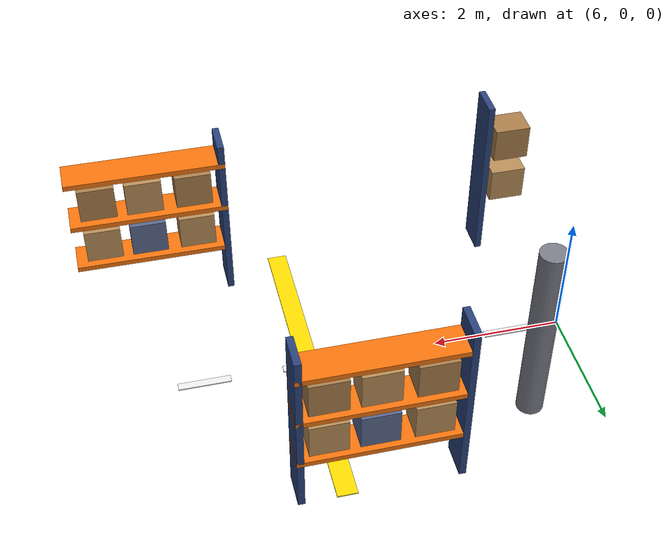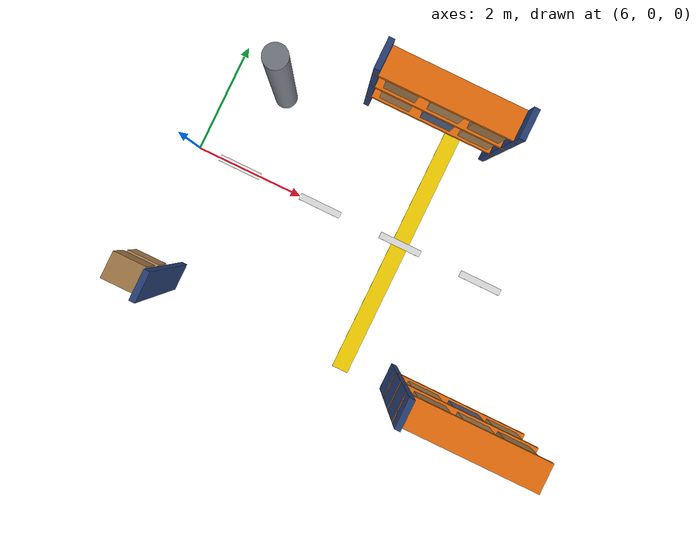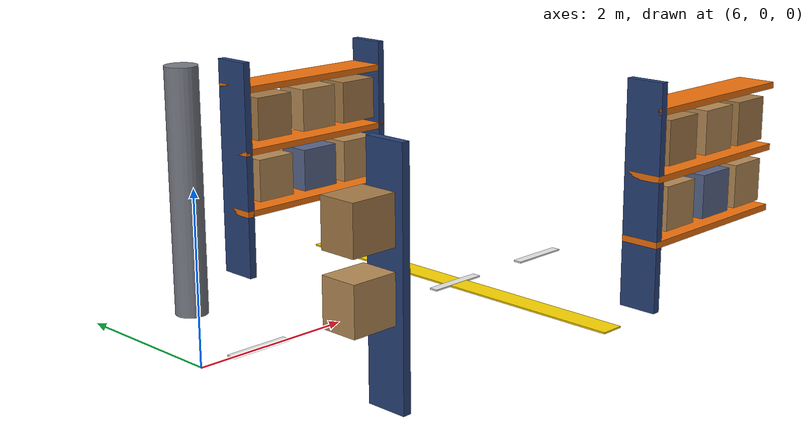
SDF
<sdf version="1.10">
 <world name="warehouse_corridor">
  <model name="zone_stripe_AB">
   <static>true</static>
   <pose>10 0 0.011 0 0 0</pose>
   <link name="link">
    <visual name="vis">
     <geometry><box><size>0.3 5 0.02</size></box></geometry>
     <material>
      <ambient>0.85 0.75 0.0 1</ambient>
      <diffuse>1.0 0.85 0.0 1</diffuse>
      <specular>0.1 0.1 0.1 1</specular>
     </material>
    </visual>
   </link>
  </model>
  <model name="lane_3">
   <static>true</static>
   <pose>6.800000000000001 0 0.012 0 0 0</pose>
   <link name="link">
    <visual name="vis">
     <geometry><box><size>0.8 0.12 0.02</size></box></geometry>
     <material>
      <ambient>0.7 0.7 0.7 1</ambient>
      <diffuse>0.92 0.92 0.92 1</diffuse>
      <specular>0.1 0.1 0.1 1</specular>
     </material>
    </visual>
   </link>
  </model>
  <model name="lane_4">
   <static>true</static>
   <pose>8.4 0 0.012 0 0 0</pose>
   <link name="link">
    <visual name="vis">
     <geometry><box><size>0.8 0.12 0.02</size></box></geometry>
     <material>
      <ambient>0.7 0.7 0.7 1</ambient>
      <diffuse>0.92 0.92 0.92 1</diffuse>
      <specular>0.1 0.1 0.1 1</specular>
     </material>
    </visual>
   </link>
  </model>
  <model name="lane_5">
   <static>true</static>
   <pose>10.0 0 0.012 0 0 0</pose>
   <link name="link">
    <visual name="vis">
     <geometry><box><size>0.8 0.12 0.02</size></box></geometry>
     <material>
      <ambient>0.7 0.7 0.7 1</ambient>
      <diffuse>0.92 0.92 0.92 1</diffuse>
      <specular>0.1 0.1 0.1 1</specular>
     </material>
    </visual>
   </link>
  </model>
  <model name="lane_6">
   <static>true</static>
   <pose>11.6 0 0.012 0 0 0</pose>
   <link name="link">
    <visual name="vis">
     <geometry><box><size>0.8 0.12 0.02</size></box></geometry>
     <material>
      <ambient>0.7 0.7 0.7 1</ambient>
      <diffuse>0.92 0.92 0.92 1</diffuse>
      <specular>0.1 0.1 0.1 1</specular>
     </material>
    </visual>
   </link>
  </model>
  <model name="rack_L95_up0">
   <static>true</static>
   <pose>8.35 2.25 1.4 0 0 0</pose>
   <link name="link">
    <collision name="col"><geometry><box><size>0.1 0.5 2.8</size></box></geometry></collision>
    <visual name="vis">
     <geometry><box><size>0.1 0.5 2.8</size></box></geometry>
     <material>
      <ambient>0.10 0.16 0.30 1</ambient>
      <diffuse>0.16 0.26 0.48 1</diffuse>
      <specular>0.3 0.3 0.35 1</specular>
     </material>
    </visual>
   </link>
  </model>
  <model name="rack_L95_up1">
   <static>true</static>
   <pose>10.65 2.25 1.4 0 0 0</pose>
   <link name="link">
    <collision name="col"><geometry><box><size>0.1 0.5 2.8</size></box></geometry></collision>
    <visual name="vis">
     <geometry><box><size>0.1 0.5 2.8</size></box></geometry>
     <material>
      <ambient>0.10 0.16 0.30 1</ambient>
      <diffuse>0.16 0.26 0.48 1</diffuse>
      <specular>0.3 0.3 0.35 1</specular>
     </material>
    </visual>
   </link>
  </model>
  <model name="rack_L95_beam0">
   <static>true</static>
   <pose>9.5 2.25 0.85 0 0 0</pose>
   <link name="link">
    <collision name="col"><geometry><box><size>2.4 0.5 0.08</size></box></geometry></collision>
    <visual name="vis">
     <geometry><box><size>2.4 0.5 0.08</size></box></geometry>
     <material>
      <ambient>0.55 0.27 0.0 1</ambient>
      <diffuse>0.95 0.45 0.05 1</diffuse>
      <specular>0.3 0.2 0.1 1</specular>
     </material>
    </visual>
   </link>
  </model>
  <model name="rack_L95_beam1">
   <static>true</static>
   <pose>9.5 2.25 1.65 0 0 0</pose>
   <link name="link">
    <collision name="col"><geometry><box><size>2.4 0.5 0.08</size></box></geometry></collision>
    <visual name="vis">
     <geometry><box><size>2.4 0.5 0.08</size></box></geometry>
     <material>
      <ambient>0.55 0.27 0.0 1</ambient>
      <diffuse>0.95 0.45 0.05 1</diffuse>
      <specular>0.3 0.2 0.1 1</specular>
     </material>
    </visual>
   </link>
  </model>
  <model name="rack_L95_beam2">
   <static>true</static>
   <pose>9.5 2.25 2.45 0 0 0</pose>
   <link name="link">
    <collision name="col"><geometry><box><size>2.4 0.5 0.08</size></box></geometry></collision>
    <visual name="vis">
     <geometry><box><size>2.4 0.5 0.08</size></box></geometry>
     <material>
      <ambient>0.55 0.27 0.0 1</ambient>
      <diffuse>0.95 0.45 0.05 1</diffuse>
      <specular>0.3 0.2 0.1 1</specular>
     </material>
    </visual>
   </link>
  </model>
  <model name="rack_L95_box00">
   <static>true</static>
   <pose>8.8 2.25 1.25 0 0 0</pose>
   <link name="link">
    <collision name="col"><geometry><box><size>0.55 0.45 0.55</size></box></geometry></collision>
    <visual name="vis">
     <geometry><box><size>0.55 0.45 0.55</size></box></geometry>
     <material>
      <ambient>0.42 0.30 0.16 1</ambient>
      <diffuse>0.72 0.55 0.34 1</diffuse>
      <specular>0.1 0.1 0.1 1</specular>
     </material>
    </visual>
   </link>
  </model>
  <model name="rack_L95_box01">
   <static>true</static>
   <pose>9.55 2.25 1.25 0 0 0</pose>
   <link name="link">
    <collision name="col"><geometry><box><size>0.55 0.45 0.55</size></box></geometry></collision>
    <visual name="vis">
     <geometry><box><size>0.55 0.45 0.55</size></box></geometry>
     <material>
      <ambient>0.20 0.22 0.28 1</ambient>
      <diffuse>0.35 0.40 0.55 1</diffuse>
      <specular>0.5 0.5 0.6 1</specular>
     </material>
    </visual>
   </link>
  </model>
  <model name="rack_L95_box02">
   <static>true</static>
   <pose>10.25 2.25 1.25 0 0 0</pose>
   <link name="link">
    <collision name="col"><geometry><box><size>0.55 0.45 0.55</size></box></geometry></collision>
    <visual name="vis">
     <geometry><box><size>0.55 0.45 0.55</size></box></geometry>
     <material>
      <ambient>0.42 0.30 0.16 1</ambient>
      <diffuse>0.72 0.55 0.34 1</diffuse>
      <specular>0.1 0.1 0.1 1</specular>
     </material>
    </visual>
   </link>
  </model>
  <model name="rack_L95_box10">
   <static>true</static>
   <pose>8.8 2.25 2.05 0 0 0</pose>
   <link name="link">
    <collision name="col"><geometry><box><size>0.55 0.45 0.55</size></box></geometry></collision>
    <visual name="vis">
     <geometry><box><size>0.55 0.45 0.55</size></box></geometry>
     <material>
      <ambient>0.38 0.27 0.14 1</ambient>
      <diffuse>0.66 0.49 0.29 1</diffuse>
      <specular>0.1 0.1 0.1 1</specular>
     </material>
    </visual>
   </link>
  </model>
  <model name="rack_L95_box11">
   <static>true</static>
   <pose>9.55 2.25 2.05 0 0 0</pose>
   <link name="link">
    <collision name="col"><geometry><box><size>0.55 0.45 0.55</size></box></geometry></collision>
    <visual name="vis">
     <geometry><box><size>0.55 0.45 0.55</size></box></geometry>
     <material>
      <ambient>0.42 0.30 0.16 1</ambient>
      <diffuse>0.72 0.55 0.34 1</diffuse>
      <specular>0.1 0.1 0.1 1</specular>
     </material>
    </visual>
   </link>
  </model>
  <model name="rack_L95_box12">
   <static>true</static>
   <pose>10.25 2.25 2.05 0 0 0</pose>
   <link name="link">
    <collision name="col"><geometry><box><size>0.55 0.45 0.55</size></box></geometry></collision>
    <visual name="vis">
     <geometry><box><size>0.55 0.45 0.55</size></box></geometry>
     <material>
      <ambient>0.38 0.27 0.14 1</ambient>
      <diffuse>0.66 0.49 0.29 1</diffuse>
      <specular>0.1 0.1 0.1 1</specular>
     </material>
    </visual>
   </link>
  </model>
  <model name="rack_R55_up1">
   <static>true</static>
   <pose>6.65 -2.25 1.4 0 0 0</pose>
   <link name="link">
    <collision name="col"><geometry><box><size>0.1 0.5 2.8</size></box></geometry></collision>
    <visual name="vis">
     <geometry><box><size>0.1 0.5 2.8</size></box></geometry>
     <material>
      <ambient>0.10 0.16 0.30 1</ambient>
      <diffuse>0.16 0.26 0.48 1</diffuse>
      <specular>0.3 0.3 0.35 1</specular>
     </material>
    </visual>
   </link>
  </model>
  <model name="rack_R55_box02">
   <static>true</static>
   <pose>6.25 -2.25 1.25 0 0 0</pose>
   <link name="link">
    <collision name="col"><geometry><box><size>0.55 0.45 0.55</size></box></geometry></collision>
    <visual name="vis">
     <geometry><box><size>0.55 0.45 0.55</size></box></geometry>
     <material>
      <ambient>0.42 0.30 0.16 1</ambient>
      <diffuse>0.72 0.55 0.34 1</diffuse>
      <specular>0.1 0.1 0.1 1</specular>
     </material>
    </visual>
   </link>
  </model>
  <model name="rack_R55_box12">
   <static>true</static>
   <pose>6.25 -2.25 2.05 0 0 0</pose>
   <link name="link">
    <collision name="col"><geometry><box><size>0.55 0.45 0.55</size></box></geometry></collision>
    <visual name="vis">
     <geometry><box><size>0.55 0.45 0.55</size></box></geometry>
     <material>
      <ambient>0.38 0.27 0.14 1</ambient>
      <diffuse>0.66 0.49 0.29 1</diffuse>
      <specular>0.1 0.1 0.1 1</specular>
     </material>
    </visual>
   </link>
  </model>
  <model name="rack_R120_up0">
   <static>true</static>
   <pose>10.85 -2.25 1.4 0 0 0</pose>
   <link name="link">
    <collision name="col"><geometry><box><size>0.1 0.5 2.8</size></box></geometry></collision>
    <visual name="vis">
     <geometry><box><size>0.1 0.5 2.8</size></box></geometry>
     <material>
      <ambient>0.10 0.16 0.30 1</ambient>
      <diffuse>0.16 0.26 0.48 1</diffuse>
      <specular>0.3 0.3 0.35 1</specular>
     </material>
    </visual>
   </link>
  </model>
  <model name="rack_R120_beam0">
   <static>true</static>
   <pose>12.0 -2.25 0.85 0 0 0</pose>
   <link name="link">
    <collision name="col"><geometry><box><size>2.4 0.5 0.08</size></box></geometry></collision>
    <visual name="vis">
     <geometry><box><size>2.4 0.5 0.08</size></box></geometry>
     <material>
      <ambient>0.55 0.27 0.0 1</ambient>
      <diffuse>0.95 0.45 0.05 1</diffuse>
      <specular>0.3 0.2 0.1 1</specular>
     </material>
    </visual>
   </link>
  </model>
  <model name="rack_R120_beam1">
   <static>true</static>
   <pose>12.0 -2.25 1.65 0 0 0</pose>
   <link name="link">
    <collision name="col"><geometry><box><size>2.4 0.5 0.08</size></box></geometry></collision>
    <visual name="vis">
     <geometry><box><size>2.4 0.5 0.08</size></box></geometry>
     <material>
      <ambient>0.55 0.27 0.0 1</ambient>
      <diffuse>0.95 0.45 0.05 1</diffuse>
      <specular>0.3 0.2 0.1 1</specular>
     </material>
    </visual>
   </link>
  </model>
  <model name="rack_R120_beam2">
   <static>true</static>
   <pose>12.0 -2.25 2.45 0 0 0</pose>
   <link name="link">
    <collision name="col"><geometry><box><size>2.4 0.5 0.08</size></box></geometry></collision>
    <visual name="vis">
     <geometry><box><size>2.4 0.5 0.08</size></box></geometry>
     <material>
      <ambient>0.55 0.27 0.0 1</ambient>
      <diffuse>0.95 0.45 0.05 1</diffuse>
      <specular>0.3 0.2 0.1 1</specular>
     </material>
    </visual>
   </link>
  </model>
  <model name="rack_R120_box00">
   <static>true</static>
   <pose>11.3 -2.25 1.25 0 0 0</pose>
   <link name="link">
    <collision name="col"><geometry><box><size>0.55 0.45 0.55</size></box></geometry></collision>
    <visual name="vis">
     <geometry><box><size>0.55 0.45 0.55</size></box></geometry>
     <material>
      <ambient>0.42 0.30 0.16 1</ambient>
      <diffuse>0.72 0.55 0.34 1</diffuse>
      <specular>0.1 0.1 0.1 1</specular>
     </material>
    </visual>
   </link>
  </model>
  <model name="rack_R120_box01">
   <static>true</static>
   <pose>12.05 -2.25 1.25 0 0 0</pose>
   <link name="link">
    <collision name="col"><geometry><box><size>0.55 0.45 0.55</size></box></geometry></collision>
    <visual name="vis">
     <geometry><box><size>0.55 0.45 0.55</size></box></geometry>
     <material>
      <ambient>0.20 0.22 0.28 1</ambient>
      <diffuse>0.35 0.40 0.55 1</diffuse>
      <specular>0.5 0.5 0.6 1</specular>
     </material>
    </visual>
   </link>
  </model>
  <model name="rack_R120_box02">
   <static>true</static>
   <pose>12.75 -2.25 1.25 0 0 0</pose>
   <link name="link">
    <collision name="col"><geometry><box><size>0.55 0.45 0.55</size></box></geometry></collision>
    <visual name="vis">
     <geometry><box><size>0.55 0.45 0.55</size></box></geometry>
     <material>
      <ambient>0.42 0.30 0.16 1</ambient>
      <diffuse>0.72 0.55 0.34 1</diffuse>
      <specular>0.1 0.1 0.1 1</specular>
     </material>
    </visual>
   </link>
  </model>
  <model name="rack_R120_box10">
   <static>true</static>
   <pose>11.3 -2.25 2.05 0 0 0</pose>
   <link name="link">
    <collision name="col"><geometry><box><size>0.55 0.45 0.55</size></box></geometry></collision>
    <visual name="vis">
     <geometry><box><size>0.55 0.45 0.55</size></box></geometry>
     <material>
      <ambient>0.38 0.27 0.14 1</ambient>
      <diffuse>0.66 0.49 0.29 1</diffuse>
      <specular>0.1 0.1 0.1 1</specular>
     </material>
    </visual>
   </link>
  </model>
  <model name="rack_R120_box11">
   <static>true</static>
   <pose>12.05 -2.25 2.05 0 0 0</pose>
   <link name="link">
    <collision name="col"><geometry><box><size>0.55 0.45 0.55</size></box></geometry></collision>
    <visual name="vis">
     <geometry><box><size>0.55 0.45 0.55</size></box></geometry>
     <material>
      <ambient>0.42 0.30 0.16 1</ambient>
      <diffuse>0.72 0.55 0.34 1</diffuse>
      <specular>0.1 0.1 0.1 1</specular>
     </material>
    </visual>
   </link>
  </model>
  <model name="rack_R120_box12">
   <static>true</static>
   <pose>12.75 -2.25 2.05 0 0 0</pose>
   <link name="link">
    <collision name="col"><geometry><box><size>0.55 0.45 0.55</size></box></geometry></collision>
    <visual name="vis">
     <geometry><box><size>0.55 0.45 0.55</size></box></geometry>
     <material>
      <ambient>0.38 0.27 0.14 1</ambient>
      <diffuse>0.66 0.49 0.29 1</diffuse>
      <specular>0.1 0.1 0.1 1</specular>
     </material>
    </visual>
   </link>
  </model>
  <model name="obs_a_pillar">
   <static>true</static>
   <pose>7 1.5 1.5 0 0 0</pose>
   <link name="link">
    <collision name="col">
     <geometry><cylinder><radius>0.2</radius><length>3.0</length></cylinder></geometry>
    </collision>
    <visual name="vis">
     <geometry><cylinder><radius>0.2</radius><length>3.0</length></cylinder></geometry>
     <material>
      <ambient>0.33 0.34 0.37 1</ambient>
      <diffuse>0.48 0.49 0.53 1</diffuse>
      <specular>0.3 0.3 0.3 1</specular>
     </material>
    </visual>
   </link>
  </model>
 </world>
</sdf>
